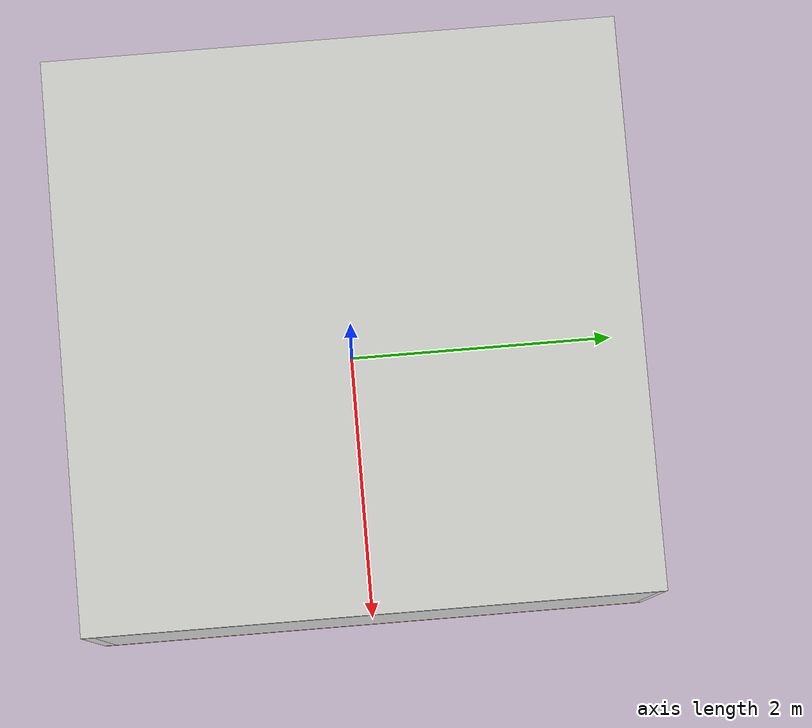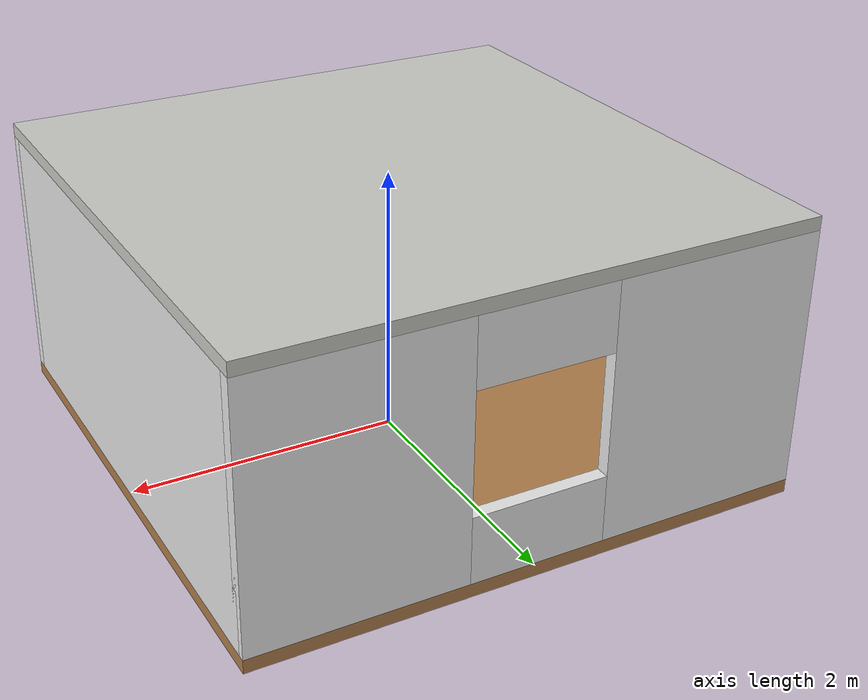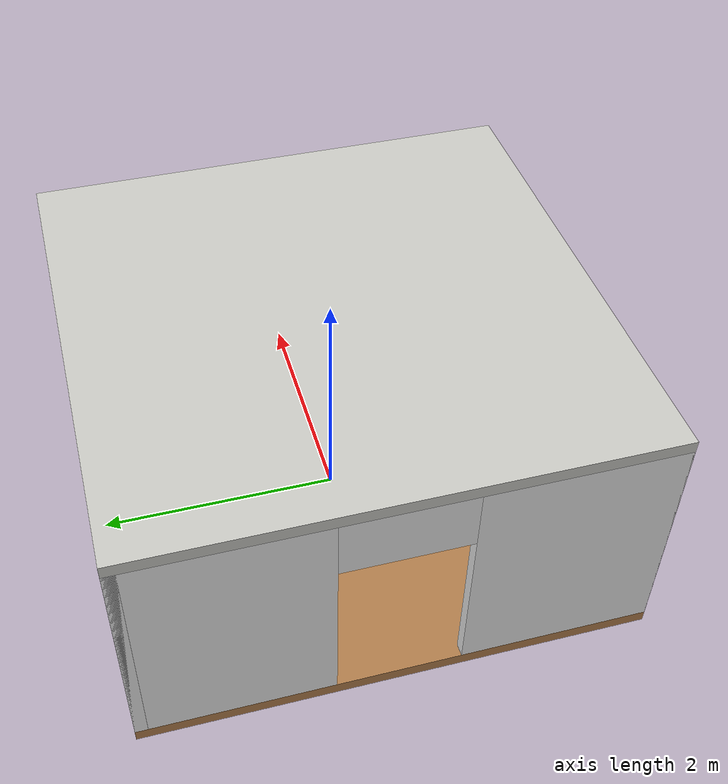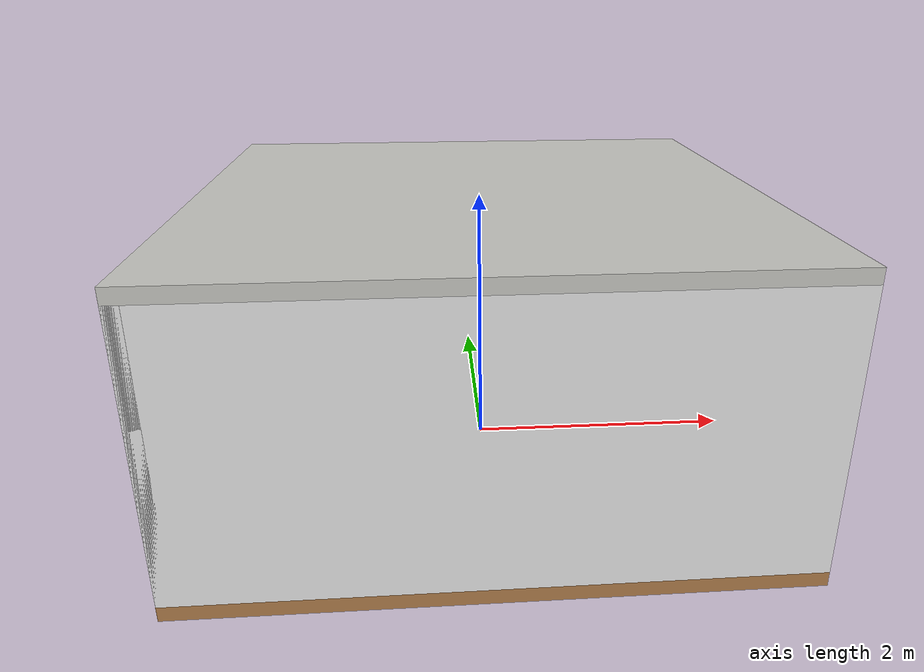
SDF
<?xml version="1.0"?>
<sdf version="1.6">
  <world name="room_4x4">

    <include>
      <uri>model://sun</uri>
    </include>

    <model name="floor">
      <static>true</static>
      <link name="floor_link">
        <collision name="collision">
          <geometry>
            <box><size>4.1 4.1 0.1</size></box>
          </geometry>
        </collision>
        <visual name="visual">
          <geometry>
            <box><size>4.1 4.1 0.1</size></box>
          </geometry>
	  <material>
           <script>
            <uri>file://media/materials/scripts/gazebo.material</uri>
            <name>Gazebo/WoodFloor</name>
           </script>
          </material>
        </visual>
        <pose>0 0 0 0 0 0</pose>
      </link>
    </model>

    <model name="north_wall_left">
  <static>true</static>
  <link name="wall_link">
    <collision name="collision">
      <geometry>
        <box><size>1.55 0.1 1.9</size></box>
      </geometry>
    </collision>
    <visual name="visual">
      <geometry>
        <box><size>1.55 0.1 1.9</size></box>
      </geometry>
      <material>
       <script>
        <uri>file://media/materials/scripts/gazebo.material</uri>
        <name>Gazebo/White</name>
       </script>
      </material>
    </visual>
    <pose>-1.275 2 1 0 0 0</pose>
  </link>
</model>

<model name="north_wall_right">
  <static>true</static>
  <link name="wall_link">
    <collision name="collision">
      <geometry>
        <box><size>1.55 0.1 1.9</size></box>
      </geometry>
    </collision>
    <visual name="visual">
      <geometry>
        <box><size>1.55 0.1 1.9</size></box>
      </geometry>
      <material>
       <script>
        <uri>file://media/materials/scripts/gazebo.material</uri>
        <name>Gazebo/White</name>
       </script>
      </material>
    </visual>
    <pose>1.275 2 1 0 0 0</pose>
  </link>
</model>

<model name="north_wall_top">
  <static>true</static>
  <link name="wall_link">
    <collision name="collision">
      <geometry>
        <box><size>1 0.1 0.5</size></box>
      </geometry>
    </collision>
    <visual name="visual">
      <geometry>
        <box><size>1 0.1 0.5</size></box>
      </geometry>
      <material>
       <script>
        <uri>file://media/materials/scripts/gazebo.material</uri>
        <name>Gazebo/White</name>
       </script>
      </material>
    </visual>
    <pose>0 2 1.70 0 0 0</pose>
  </link>
</model>

<model name="north_wall_bottom">
  <static>true</static>
  <link name="wall_link">
    <collision name="collision">
      <geometry>
        <box><size>1 0.1 0.5</size></box>
      </geometry>
    </collision>
    <visual name="visual">
      <geometry>
        <box><size>1 0.1 0.5</size></box>
      </geometry>
      <material>
       <script>
        <uri>file://media/materials/scripts/gazebo.material</uri>
        <name>Gazebo/White</name>
       </script>
      </material>
    </visual>
    <pose>0 2 0.3 0 0 0</pose>
  </link>
</model>

    <model name="south_wall">
      <static>true</static>
      <link name="wall_link">
        <collision name="collision">
          <geometry>
            <box><size>4.1 0.1 1.9</size></box>
          </geometry>
        </collision>
        <visual name="visual">
          <geometry>
            <box><size>4.1 0.1 1.9</size></box>
           </geometry>
           <material>
            <script>
             <uri>file://media/materials/scripts/gazebo.material</uri>
             <name>Gazebo/White</name>
            </script>
           </material>
        </visual>
        <pose>0 -2 1 0 0 0</pose>
      </link>
    </model>

    <model name="east_wall">
      <static>true</static>
      <link name="wall_link">
        <collision name="collision">
          <geometry>
            <box><size>0.1 4 1.9</size></box>
          </geometry>
        </collision>
        <visual name="visual">
          <geometry>
            <box><size>0.1 4 1.9</size></box>
          </geometry>
          <material>
            <script>
             <uri>file://media/materials/scripts/gazebo.material</uri>
             <name>Gazebo/White</name>
            </script>
           </material>
        </visual>
        <pose>2 0 1 0 0 0</pose>
      </link>
    </model>

    <model name="west_wall_left">
  <static>true</static>
  <link name="wall_link">
    <collision name="collision">
      <geometry>
        <box><size>0.1 1.55 1.9</size></box>
      </geometry>
    </collision>
    <visual name="visual">
      <geometry>
        <box><size>0.1 1.55 1.9</size></box>
      </geometry>
      <material>
       <script>
        <uri>file://media/materials/scripts/gazebo.material</uri>
        <name>Gazebo/White</name>
       </script>
      </material>
     </visual>
    <pose>-2 -1.275 1 0 0 0</pose>
  </link>
</model>

<model name="west_wall_right">
  <static>true</static>
  <link name="wall_link">
    <collision name="collision">
      <geometry>
        <box><size>0.1 1.55 1.9</size></box>
      </geometry>
    </collision>
    <visual name="visual">
      <geometry>
        <box><size>0.1 1.55 1.9</size></box>
      </geometry>
      <material>
       <script>
         <uri>file://media/materials/scripts/gazebo.material</uri>
         <name>Gazebo/White</name>
       </script>
      </material>
    </visual>
    <pose>-2 1.275 1 0 0 0</pose>
  </link>
</model>

<model name="west_wall_top">
  <static>true</static>
  <link name="wall_link">
    <collision name="collision">
      <geometry>
        <box><size>0.1 1 0.5</size></box>
      </geometry>
    </collision>
    <visual name="visual">
      <geometry>
        <box><size>0.1 1 0.5</size></box>
      </geometry>
      <material>
       <script>
        <uri>file://media/materials/scripts/gazebo.material</uri>
        <name>Gazebo/White</name>
       </script>
      </material>
    </visual>
    <pose>-2 0 1.70 0 0 0</pose>
  </link>
</model>

    <model name="ceiling">
      <static>true</static>
      <link name="ceiling_link">
        <collision name="collision">
          <geometry>
            <box><size>4.1 4.1 0.1</size></box>
          </geometry>
        </collision>
        <visual name="visual">
          <geometry>
            <box><size>4.1 4.1 0.1</size></box>
          </geometry>
	  <material>
           <script>
            <uri>file://media/materials/scripts/gazebo.material</uri>
            <name>Gazebo/CeilingTiled</name>
           </script>
          </material>
        </visual>
        <pose>0 0 2 0 0 0</pose>
      </link>
    </model>

  </world>
</sdf>
